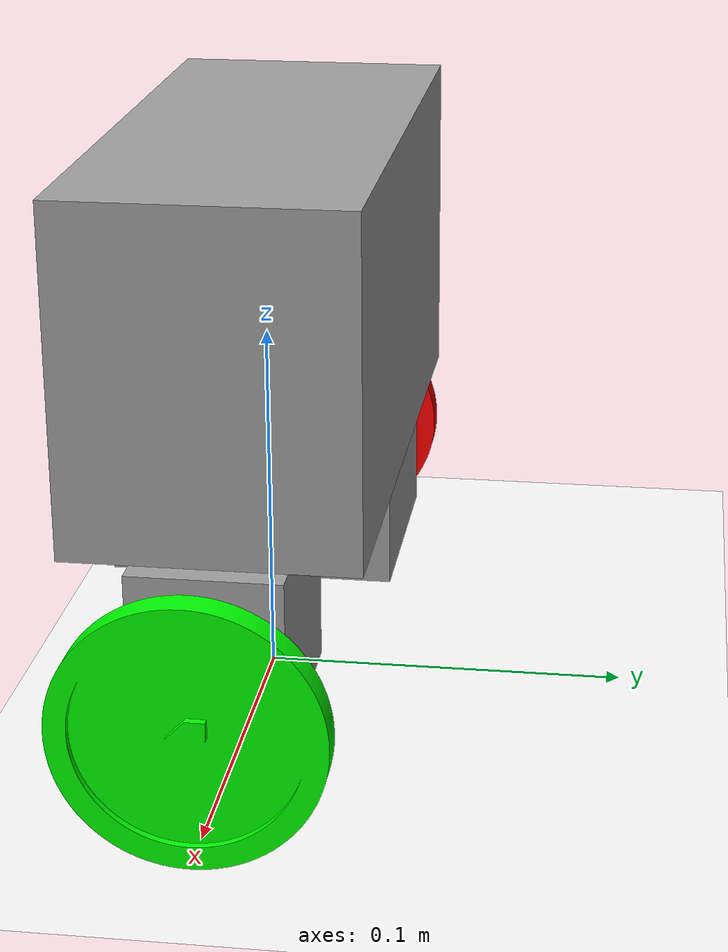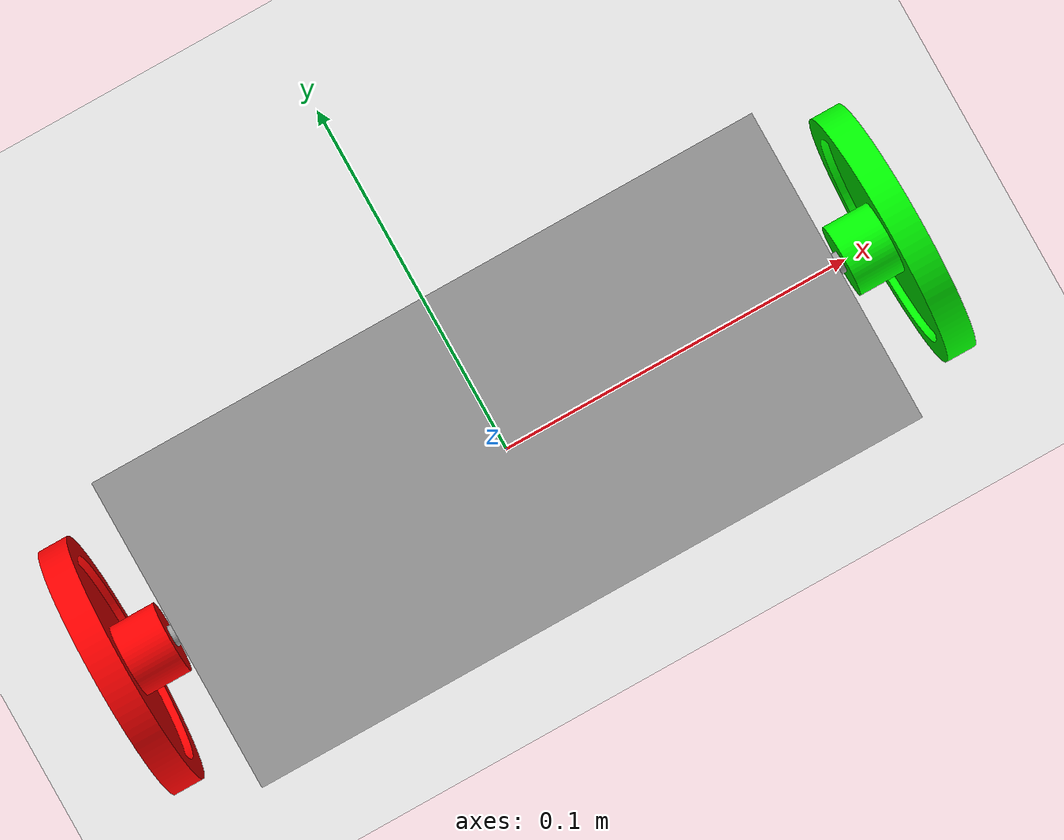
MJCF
<!-- Generated using Fusion2Mujoco v1.0.1 -->
<!-- https://github.com/jgillick/Fusion2Mujoco -->
<mujoco model="JaredBot">
    <compiler angle="radian" />
    <option timestep="0.005" gravity="0 0 -9.81" integrator="implicitfast"/>
    <default>
        <mesh scale="0.001 0.001 0.001" />
        <geom friction="0.8 0.005 0.0001"/>
    </default>
    <custom>
        <numeric name="ground_offset" data="0.0657179" />
    </custom>
    <asset>
        <mesh name="battery_box_visual" file="meshes\battery_box\visual.stl" />
        <mesh name="left_motor_visual" file="meshes\left_motor\visual.stl" />
        <mesh name="right_motor_visual" file="meshes\right_motor\visual.stl" />
        <mesh name="left_wheel_visual" file="meshes\left_wheel\visual.stl" />
        <mesh name="right_wheel_visual" file="meshes\right_wheel\visual.stl" />
        <mesh name="robot_visual" file="meshes\robot\visual.stl" />
        <material name="battery_box_mat" rgba="0.6275 0.6275 0.6275 1.0000" roughness="0.2646" />
        <material name="left_motor_mat" rgba="0.6275 0.6275 0.6275 1.0000" roughness="0.2646" />
        <material name="right_motor_mat" rgba="0.6275 0.6275 0.6275 1.0000" roughness="0.2646" />
        <material name="left_wheel_mat" rgba="0.0000 1.0000 0.0000 1.0000" roughness="0.2646" />
        <material name="right_wheel_mat" rgba="1.0000 0.0000 0.0000 1.0000" roughness="0.2646" />
        <material name="robot_mat" rgba="0.6275 0.6275 0.6275 1.0000" roughness="0.2646" />
        <texture type="2d" name="ground_plane" builtin="checker" mark="edge" rgb1="0.2 0.3 0.4" rgb2="0.1 0.2 0.3" markrgb="0.8 0.8 0.8" width="200" height="200" />
        <material name="ground_plane" texture="ground_plane" texuniform="true" texrepeat="5 5" reflectance="0.2" />
    </asset>
    <worldbody>
        <light directional="true" pos="-0.5 0.5 3" dir="0 0 -1" />
        <geom name="floor" size="10 10 0.05" type="plane" contype="1" conaffinity="1" rgba="1 1 1 1" material="ground_plane" />
        <body name="model_root" pos="0.0 0.0 0.0657179" quat="1 0 0 0">
            <freejoint />
            <body name="left_motor" pos="0.0 0.0 0.0" quat="1.0 0.0 0.0 0.0">
                <geom mesh="left_motor_visual" name="left_motor_left_motor_visual_geom" type="mesh" pos="0 0 0" quat="1 0 0 0" material="left_motor_mat" />
                <inertial mass="0.7668569598401186" pos="0.06288137645152665 1.518713982295315e-15 -0.022542529650702803" fullinertia="0.00023078759269471274 0.00031958359620482425 0.000292284137927281 -4.198028128558328e-17 1.1763478103728187e-06 9.845415505172674e-18" />
                <body name="left_wheel" pos="0.0 0.0 0.0" quat="1.0 0.0 0.0 0.0">
                    <joint type="hinge" name="left_wheel" axis="1.0 0.0 0.0" pos="0.1082 0.0 -0.031" damping="0.001" frictionloss="0.001" />
                    <geom mesh="left_wheel_visual" name="left_wheel_left_wheel_visual_geom" type="mesh" pos="0 0 0" quat="1 0 0 0" material="left_wheel_mat" />
                    <inertial mass="0.18317090980899264" pos="0.10901616765242352 1.5880871292986323e-13 -0.03113216640092299" fullinertia="0.00011034048391740637 5.757728617242653e-05 5.7596244830241186e-05 2.0540168513336348e-16 2.707726360164954e-08 -4.088541670447315e-09" />
                </body>
            </body>
            <body name="robot" pos="0.0 0.0 0.0" quat="1.0 0.0 0.0 0.0">
                <geom mesh="robot_visual" name="robot_robot_visual_geom" type="mesh" pos="0 0 0" quat="1 0 0 0" material="robot_mat" />
                <inertial mass="12.100590031298227" pos="-7.339959600340545e-19 5.000379773554237e-15 0.030544609378349036" fullinertia="0.02195301872095598 0.0492751320669445 0.03800633547497197 1.1423253454267808e-17 -1.0706512066103094e-18 -8.177079609568814e-09" />
            </body>
            <body name="battery_box" pos="0.0 0.0 0.0" quat="1.0 0.0 0.0 0.0">
                <geom mesh="battery_box_visual" name="battery_box_battery_box_visual_geom" type="mesh" pos="0 0 0" quat="1 0 0 0" material="battery_box_mat" />
                <inertial mass="0.9137644920000002" pos="-4.883324335362145e-18 0.0 -0.012700000000000001" fullinertia="0.0004889523337875603 0.00032600451928125034 0.0007167028031256906 0.0 1.2047962627548261e-20 8.924416761146858e-20" />
            </body>
            <body name="right_motor" pos="0.0 0.0 0.0" quat="0.0 0.0 1.0 0.0">
                <geom mesh="right_motor_visual" name="right_motor_right_motor_visual_geom" type="mesh" pos="0 0 0" quat="1 0 0 0" material="right_motor_mat" />
                <inertial mass="0.7668569598401186" pos="0.06288137645152665 1.518713982295315e-15 0.022542529650702803" fullinertia="0.00023078759269471274 0.00031958359620482425 0.000292284137927281 -4.198028128558328e-17 -1.1763478103726018e-06 -9.80079342136694e-18" />
                <body name="right_wheel" pos="0.0 0.0 0.0" quat="1.0 0.0 0.0 0.0">
                    <joint type="hinge" name="right_wheel" axis="1.0 0.0 0.0" pos="0.1082 0.0 0.031" damping="0.001" frictionloss="0.001" />
                    <geom mesh="right_wheel_visual" name="right_wheel_right_wheel_visual_geom" type="mesh" pos="0 0 0" quat="1 0 0 0" material="right_wheel_mat" />
                    <inertial mass="0.18317090980899264" pos="0.10901616765242352 1.5880871292986323e-13 0.031132166400923037" fullinertia="0.00011034048391740664 5.757728617242653e-05 5.7596244830241186e-05 2.0540168513336348e-16 -2.707726360164954e-08 4.08854167075967e-09" />
                </body>
            </body>
        </body>
    </worldbody>

    <actuator>
        <motor name="left_motor"
            joint="left_wheel"
            gear="0.05"
            ctrlrange="-1 1"/>

        <motor name="right_motor"
            joint="right_wheel"
            gear="0.05"
            ctrlrange="-1 1"/>
    </actuator>

    <sensor>
        <jointpos name="left_wheel_pos" joint="left_wheel"/>
        <jointpos name="right_wheel_pos" joint="right_wheel"/>
        <jointvel name="left_wheel_vel" joint="left_wheel"/>
        <jointvel name="right_wheel_vel" joint="right_wheel"/>
    </sensor>
</mujoco>
